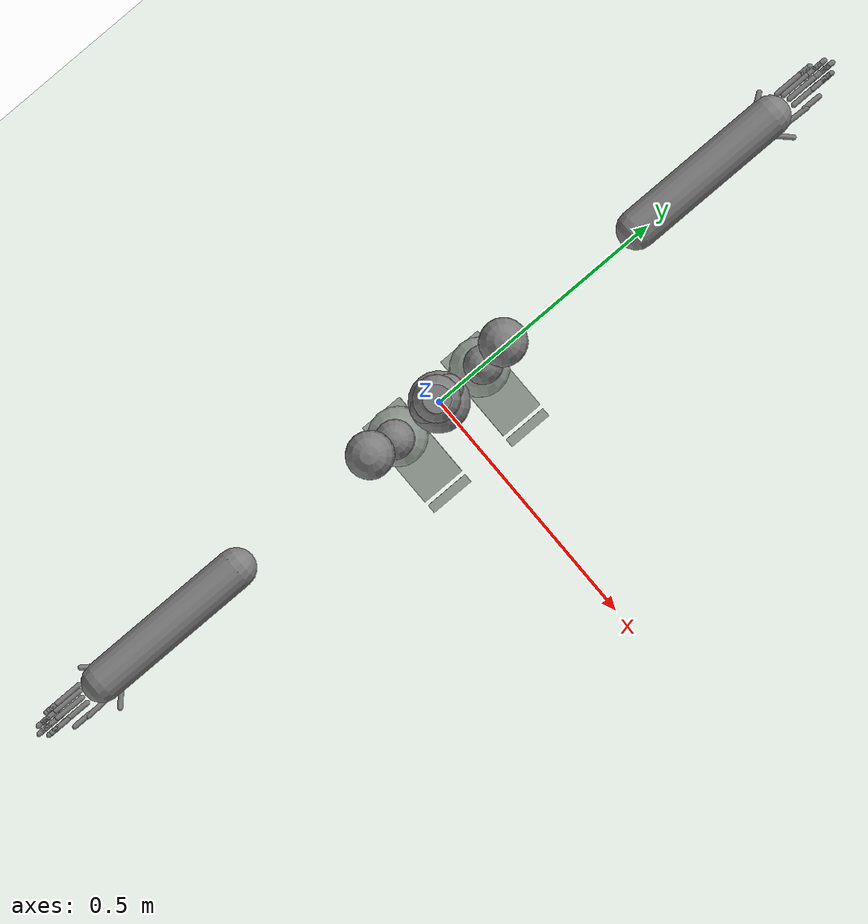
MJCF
<?xml version="1.0" ?>
<mujoco model="humanoid">
  <compiler coordinate="local"/>
  <statistic extent="2" center="0 0 1"/>
  <option timestep="0.00555"/>
  <default>
    <motor ctrlrange="-1 1" ctrllimited="true"/>
    <geom type="capsule" condim="1" friction="1.0 0.05 0.05" solimp=".9 .99 .003" solref=".015 1"/>
    <joint type="hinge" damping="0.1" stiffness="5" armature=".007" limited="true" solimplimit="0 .99 .01"/>
    <site size=".04" group="3"/>
  </default>
  <asset>
    <texture type="skybox" builtin="gradient" rgb1=".4 .5 .6" rgb2="0 0 0" width="100" height="100"/>
    <texture builtin="flat" height="1278" mark="cross" markrgb="1 1 1" name="texgeom" random="0.01" rgb1="0.8 0.6 0.4" rgb2="0.8 0.6 0.4" type="cube" width="127"/>
    <texture builtin="checker" height="100" name="texplane" rgb1="0 0 0" rgb2="0.8 0.8 0.8" type="2d" width="100"/>
    <material name="MatPlane" reflectance="0.5" shininess="1" specular="1" texrepeat="60 60" texture="texplane"/>
    <material name="geom" texture="texgeom" texuniform="true"/>
  </asset>
  <worldbody>
    <light cutoff="100" diffuse="1 1 1" dir="-0 0 -1.3" directional="true" exponent="1" pos="0 0 1.3" specular=".1 .1 .1"/>
    <geom conaffinity="1" condim="3" name="floor" pos="0 0 0" rgba="0.8 0.9 0.8 1" size="100 100 .2" type="plane" material="MatPlane"/>
    <body name="pHipOrigin" pos="0 0 0">
      <freejoint name="pHipOrigin"/>
      <geom type="sphere" contype="1" conaffinity="1" density="4629.6296296296305" size="0.05791" pos="0.0000 0.0000 -0.0000"/>
      <body name="jL5S1" pos="-0.00652511 0 0.05872585">
        <geom type="capsule" contype="1" conaffinity="1" density="1000" fromto="0 0 0.01182 0 0 0.04136" size="0.02068"/>
        <joint name="jL5S1_x" type="hinge" pos="0 0 0" axis="1 0 0" stiffness="500" damping="500" armature="0.02" range="-180.0000 180.0000"/>
        <joint name="jL5S1_y" type="hinge" pos="0 0 0" axis="0 1 0" stiffness="500" damping="500" armature="0.02" range="-180.0000 180.0000"/>
        <joint name="jL5S1_z" type="hinge" pos="0 0 0" axis="0 0 1" stiffness="500" damping="500" armature="0.02" range="-180.0000 180.0000"/>
        <body name="jL4L3" pos="0 0 0.07786956">
          <geom type="capsule" contype="1" conaffinity="1" density="1000" fromto="0 0 0.01557 0 0 0.05451" size="0.02725"/>
          <joint name="jL4L3_x" type="hinge" pos="0 0 0" axis="1 0 0" stiffness="500" damping="500" armature="0.02" range="-180.0000 180.0000"/>
          <joint name="jL4L3_y" type="hinge" pos="0 0 0" axis="0 1 0" stiffness="500" damping="500" armature="0.02" range="-180.0000 180.0000"/>
          <joint name="jL4L3_z" type="hinge" pos="0 0 0" axis="0 0 1" stiffness="500" damping="500" armature="0.02" range="-180.0000 180.0000"/>
          <body name="jL1T12" pos="-0.00065496 0 0.08489453">
            <geom type="capsule" contype="1" conaffinity="1" density="1000" fromto="0 0 0.01698 0 0 0.05943" size="0.02971"/>
            <joint name="jL1T12_x" type="hinge" pos="0 0 0" axis="1 0 0" stiffness="500" damping="500" armature="0.02" range="-180.0000 180.0000"/>
            <joint name="jL1T12_y" type="hinge" pos="0 0 0" axis="0 1 0" stiffness="500" damping="500" armature="0.02" range="-180.0000 180.0000"/>
            <joint name="jL1T12_z" type="hinge" pos="0 0 0" axis="0 0 1" stiffness="500" damping="500" armature="0.02" range="-180.0000 180.0000"/>
            <body name="jT9T8" pos="-0.00066287 0 0.08575297">
              <geom type="sphere" contype="1" conaffinity="1" density="1000" size="0.03430" pos="0.000 0.0000 0.034302"/>
              <joint name="jT9T8_x" type="hinge" pos="0 0 0" axis="1 0 0" stiffness="500" damping="500" armature="0.02" range="-180.0000 180.0000"/>
              <joint name="jT9T8_y" type="hinge" pos="0 0 0" axis="0 1 0" stiffness="500" damping="500" armature="0.02" range="-180.0000 180.0000"/>
              <joint name="jT9T8_z" type="hinge" pos="0 0 0" axis="0 0 1" stiffness="500" damping="500" armature="0.02" range="-180.0000 180.0000"/>
              <body name="jT1C7" pos="0 0 0.11929700">
                <geom type="capsule" contype="1" conaffinity="1" density="1000" fromto="0 0 0.02386 0 0 0.08351" size="0.04175"/>
                <joint name="jT1C7_x" type="hinge" pos="0 0 0" axis="1 0 0" stiffness="500" damping="500" armature="0.02" range="-180.0000 180.0000"/>
                <joint name="jT1C7_y" type="hinge" pos="0 0 0" axis="0 1 0" stiffness="500" damping="500" armature="0.02" range="-180.0000 180.0000"/>
                <joint name="jT1C7_z" type="hinge" pos="0 0 0" axis="0 0 1" stiffness="500" damping="500" armature="0.02" range="-180.0000 180.0000"/>
                <body name="jC1Head" pos="0.00096428 0 0.08173505">
                  <geom type="cylinder" contype="1" conaffinity="1" density="1000" fromto="0 0 0 0 0 0.08174" size="0.02452"/>
                  <joint name="jC1Head_x" type="hinge" pos="0 0 0" axis="1 0 0" stiffness="500" damping="500" armature="0.02" range="-180.0000 180.0000"/>
                  <joint name="jC1Head_y" type="hinge" pos="0 0 0" axis="0 1 0" stiffness="500" damping="500" armature="0.02" range="-180.0000 180.0000"/>
                  <joint name="jC1Head_z" type="hinge" pos="0 0 0" axis="0 0 1" stiffness="500" damping="500" armature="0.02" range="-180.0000 180.0000"/>
                </body>
              </body>
              <body name="jRightT4Shoulder" pos="0 -0.02755671 0.06718931">
                <geom type="capsule" contype="1" conaffinity="1" density="1000" fromto="0 0 0.01452 0 0 0.05083" size="0.02542"/>
                <joint name="jRightT4Shoulder_x" type="hinge" pos="0 0 0" axis="1 0 0" stiffness="500" damping="500" armature="0.02" range="-180.0000 180.0000"/>
                <joint name="jRightT4Shoulder_y" type="hinge" pos="0 0 0" axis="0 1 0" stiffness="500" damping="500" armature="0.02" range="-180.0000 180.0000"/>
                <joint name="jRightT4Shoulder_z" type="hinge" pos="0 0 0" axis="0 0 1" stiffness="500" damping="500" armature="0.02" range="-180.0000 180.0000"/>
                <body name="jRightShoulder" pos="0 -0.12239102 0">
                  <geom type="capsule" contype="1" conaffinity="1" density="1000" fromto="0 0 0.02448 0 0 0.08567" size="0.04284"/>
                  <joint name="jRightShoulder_x" type="hinge" pos="0 0 0" axis="1 0 0" stiffness="500" damping="500" armature="0.02" range="-180.0000 180.0000"/>
                  <joint name="jRightShoulder_y" type="hinge" pos="0 0 0" axis="0 1 0" stiffness="500" damping="500" armature="0.02" range="-180.0000 180.0000"/>
                  <joint name="jRightShoulder_z" type="hinge" pos="0 0 0" axis="0 0 1" stiffness="500" damping="500" armature="0.02" range="-180.0000 180.0000"/>
                  <body name="jRightElbow" pos="0 -0.30583259 0">
                    <geom type="capsule" contype="1" conaffinity="1" density="1000" fromto="0 0 0 0.00000000 -0.30583259 0.00000000" size="0.03670"/>
                    <joint name="jRightElbow_x" type="hinge" pos="0 0 0" axis="1 0 0" stiffness="500" damping="500" armature="0.02" range="-180.0000 180.0000"/>
                    <joint name="jRightElbow_y" type="hinge" pos="0 0 0" axis="0 1 0" stiffness="500" damping="500" armature="0.02" range="-180.0000 180.0000"/>
                    <joint name="jRightElbow_z" type="hinge" pos="0 0 0" axis="0 0 1" stiffness="500" damping="500" armature="0.02" range="-180.0000 180.0000"/>
                    <body name="jRightWrist" pos="0.00010393 -0.25823603 0">
                      <geom density="1000" type="box" pos="0 0 0" size="0.035 0.03 0.01" quat="1.0000 0.0000 0.0000 0.0000"/>
                      <joint name="jRightWrist_x" type="hinge" pos="0 0 0" axis="1 0 0" stiffness="500" damping="500" armature="0.02" range="-180.0000 180.0000"/>
                      <joint name="jRightWrist_y" type="hinge" pos="0 0 0" axis="0 1 0" stiffness="500" damping="500" armature="0.02" range="-180.0000 180.0000"/>
                      <joint name="jRightWrist_z" type="hinge" pos="0 0 0" axis="0 0 1" stiffness="500" damping="500" armature="0.02" range="-180.0000 180.0000"/>
                      <body name="jRightFirstCMC" pos="0.02759334 -0.02644976 -0.00124960">
                        <geom type="capsule" contype="1" conaffinity="1" density="1000" fromto="0 0 0 0.02759334 -0.02644976 -0.00124960" size="0.005"/>
                        <joint name="jRightFirstCMC_x" type="hinge" pos="0 0 0" axis="1 0 0" stiffness="500" damping="500" armature="0.02" range="-180.0000 180.0000"/>
                        <joint name="jRightFirstCMC_y" type="hinge" pos="0 0 0" axis="0 1 0" stiffness="500" damping="500" armature="0.02" range="-180.0000 180.0000"/>
                        <joint name="jRightFirstCMC_z" type="hinge" pos="0 0 0" axis="0 0 1" stiffness="500" damping="500" armature="0.02" range="-180.0000 180.0000"/>
                        <body name="jRightFirstMCP" pos="0.00137308 -0.03874727 0.00081873">
                          <geom type="capsule" contype="1" conaffinity="1" density="1000" fromto="0 0 0 0.00137308 -0.03874727 0.00081873" size="0.005"/>
                          <joint name="jRightFirstMCP_x" type="hinge" pos="0 0 0" axis="1 0 0" stiffness="500" damping="500" armature="0.02" range="-180.0000 180.0000"/>
                          <joint name="jRightFirstMCP_y" type="hinge" pos="0 0 0" axis="0 1 0" stiffness="500" damping="500" armature="0.02" range="-180.0000 180.0000"/>
                          <joint name="jRightFirstMCP_z" type="hinge" pos="0 0 0" axis="0 0 1" stiffness="500" damping="500" armature="0.02" range="-180.0000 180.0000"/>
                          <body name="jRightIP" pos="0 -0.03402020 0">
                            <geom type="capsule" contype="1" conaffinity="1" density="1000" fromto="0 0 0 0.00000000 -0.03402020 0.00000000" size="0.005"/>
                            <joint name="jRightIP_x" type="hinge" pos="0 0 0" axis="1 0 0" stiffness="500" damping="500" armature="0.02" range="-180.0000 180.0000"/>
                            <joint name="jRightIP_y" type="hinge" pos="0 0 0" axis="0 1 0" stiffness="500" damping="500" armature="0.02" range="-180.0000 180.0000"/>
                            <joint name="jRightIP_z" type="hinge" pos="0 0 0" axis="0 0 1" stiffness="500" damping="500" armature="0.02" range="-180.0000 180.0000"/>
                          </body>
                        </body>
                      </body>
                      <body name="jRightSecondCMC" pos="0.01169456 -0.03416781 -0.00059597">
                        <geom type="capsule" contype="1" conaffinity="1" density="1000" fromto="0 0 0 0.01169456 -0.03416781 -0.00059597" size="0.005"/>
                        <joint name="jRightSecondCMC_x" type="hinge" pos="0 0 0" axis="1 0 0" stiffness="500" damping="500" armature="0.02" range="-180.0000 180.0000"/>
                        <joint name="jRightSecondCMC_y" type="hinge" pos="0 0 0" axis="0 1 0" stiffness="500" damping="500" armature="0.02" range="-180.0000 180.0000"/>
                        <joint name="jRightSecondCMC_z" type="hinge" pos="0 0 0" axis="0 0 1" stiffness="500" damping="500" armature="0.02" range="-180.0000 180.0000"/>
                        <body name="jRightSecondMCP" pos="-0.00035644 -0.05684891 -0.00058971">
                          <geom type="capsule" contype="1" conaffinity="1" density="1000" fromto="0 0 0 -0.00035644 -0.05684891 -0.00058971" size="0.005"/>
                          <joint name="jRightSecondMCP_x" type="hinge" pos="0 0 0" axis="1 0 0" stiffness="500" damping="500" armature="0.02" range="-180.0000 180.0000"/>
                          <joint name="jRightSecondMCP_y" type="hinge" pos="0 0 0" axis="0 1 0" stiffness="500" damping="500" armature="0.02" range="-180.0000 180.0000"/>
                          <joint name="jRightSecondMCP_z" type="hinge" pos="0 0 0" axis="0 0 1" stiffness="500" damping="500" armature="0.02" range="-180.0000 180.0000"/>
                          <body name="jRightSecondPIP" pos="0 -0.04111196 0">
                            <geom type="capsule" contype="1" conaffinity="1" density="1000" fromto="0 0 0 0.00000000 -0.04111196 0.00000000" size="0.005"/>
                            <joint name="jRightSecondPIP_x" type="hinge" pos="0 0 0" axis="1 0 0" stiffness="500" damping="500" armature="0.02" range="-180.0000 180.0000"/>
                            <joint name="jRightSecondPIP_y" type="hinge" pos="0 0 0" axis="0 1 0" stiffness="500" damping="500" armature="0.02" range="-180.0000 180.0000"/>
                            <joint name="jRightSecondPIP_z" type="hinge" pos="0 0 0" axis="0 0 1" stiffness="500" damping="500" armature="0.02" range="-180.0000 180.0000"/>
                            <body name="jRightSecondDIP" pos="0 -0.02247494 0">
                              <geom type="capsule" contype="1" conaffinity="1" density="1000" fromto="0 0 0 0.00000000 -0.02247494 0.00000000" size="0.005"/>
                              <joint name="jRightSecondDIP_x" type="hinge" pos="0 0 0" axis="1 0 0" stiffness="500" damping="500" armature="0.02" range="-180.0000 180.0000"/>
                              <joint name="jRightSecondDIP_y" type="hinge" pos="0 0 0" axis="0 1 0" stiffness="500" damping="500" armature="0.02" range="-180.0000 180.0000"/>
                              <joint name="jRightSecondDIP_z" type="hinge" pos="0 0 0" axis="0 0 1" stiffness="500" damping="500" armature="0.02" range="-180.0000 180.0000"/>
                            </body>
                          </body>
                        </body>
                      </body>
                      <body name="jRightThirdCMC" pos="-0.00066517 -0.03597074 0.00151226">
                        <geom type="capsule" contype="1" conaffinity="1" density="1000" fromto="0 0 0 -0.00066517 -0.03597074 0.00151226" size="0.005"/>
                        <joint name="jRightThirdCMC_x" type="hinge" pos="0 0 0" axis="1 0 0" stiffness="500" damping="500" armature="0.02" range="-180.0000 180.0000"/>
                        <joint name="jRightThirdCMC_y" type="hinge" pos="0 0 0" axis="0 1 0" stiffness="500" damping="500" armature="0.02" range="-180.0000 180.0000"/>
                        <joint name="jRightThirdCMC_z" type="hinge" pos="0 0 0" axis="0 0 1" stiffness="500" damping="500" armature="0.02" range="-180.0000 180.0000"/>
                        <body name="jRightThirdMCP" pos="-0.00066519 -0.05511140 0.00149937">
                          <geom type="capsule" contype="1" conaffinity="1" density="1000" fromto="0 0 0 -0.00066519 -0.05511140 0.00149937" size="0.005"/>
                          <joint name="jRightThirdMCP_x" type="hinge" pos="0 0 0" axis="1 0 0" stiffness="500" damping="500" armature="0.02" range="-180.0000 180.0000"/>
                          <joint name="jRightThirdMCP_y" type="hinge" pos="0 0 0" axis="0 1 0" stiffness="500" damping="500" armature="0.02" range="-180.0000 180.0000"/>
                          <joint name="jRightThirdMCP_z" type="hinge" pos="0 0 0" axis="0 0 1" stiffness="500" damping="500" armature="0.02" range="-180.0000 180.0000"/>
                          <body name="jRightThirdPIP" pos="0 -0.04495940 0">
                            <geom type="capsule" contype="1" conaffinity="1" density="1000" fromto="0 0 0 0.00000000 -0.04495940 0.00000000" size="0.005"/>
                            <joint name="jRightThirdPIP_x" type="hinge" pos="0 0 0" axis="1 0 0" stiffness="500" damping="500" armature="0.02" range="-180.0000 180.0000"/>
                            <joint name="jRightThirdPIP_y" type="hinge" pos="0 0 0" axis="0 1 0" stiffness="500" damping="500" armature="0.02" range="-180.0000 180.0000"/>
                            <joint name="jRightThirdPIP_z" type="hinge" pos="0 0 0" axis="0 0 1" stiffness="500" damping="500" armature="0.02" range="-180.0000 180.0000"/>
                            <body name="jRightThirdDIP" pos="0 -0.02630422 0">
                              <geom type="capsule" contype="1" conaffinity="1" density="1000" fromto="0 0 0 0.00000000 -0.02630422 0.00000000" size="0.005"/>
                              <joint name="jRightThirdDIP_x" type="hinge" pos="0 0 0" axis="1 0 0" stiffness="500" damping="500" armature="0.02" range="-180.0000 180.0000"/>
                              <joint name="jRightThirdDIP_y" type="hinge" pos="0 0 0" axis="0 1 0" stiffness="500" damping="500" armature="0.02" range="-180.0000 180.0000"/>
                              <joint name="jRightThirdDIP_z" type="hinge" pos="0 0 0" axis="0 0 1" stiffness="500" damping="500" armature="0.02" range="-180.0000 180.0000"/>
                            </body>
                          </body>
                        </body>
                      </body>
                      <body name="jRightFourthCMC" pos="-0.01220263 -0.03398633 0.00079999">
                        <geom type="capsule" contype="1" conaffinity="1" density="1000" fromto="0 0 0 -0.01220263 -0.03398633 0.00079999" size="0.005"/>
                        <joint name="jRightFourthCMC_x" type="hinge" pos="0 0 0" axis="1 0 0" stiffness="500" damping="500" armature="0.02" range="-180.0000 180.0000"/>
                        <joint name="jRightFourthCMC_y" type="hinge" pos="0 0 0" axis="0 1 0" stiffness="500" damping="500" armature="0.02" range="-180.0000 180.0000"/>
                        <joint name="jRightFourthCMC_z" type="hinge" pos="0 0 0" axis="0 0 1" stiffness="500" damping="500" armature="0.02" range="-180.0000 180.0000"/>
                        <body name="jRightFourthMCP" pos="-0.00039075 -0.05355647 0.00084141">
                          <geom type="capsule" contype="1" conaffinity="1" density="1000" fromto="0 0 0 -0.00039075 -0.05355647 0.00084141" size="0.005"/>
                          <joint name="jRightFourthMCP_x" type="hinge" pos="0 0 0" axis="1 0 0" stiffness="500" damping="500" armature="0.02" range="-180.0000 180.0000"/>
                          <joint name="jRightFourthMCP_y" type="hinge" pos="0 0 0" axis="0 1 0" stiffness="500" damping="500" armature="0.02" range="-180.0000 180.0000"/>
                          <joint name="jRightFourthMCP_z" type="hinge" pos="0 0 0" axis="0 0 1" stiffness="500" damping="500" armature="0.02" range="-180.0000 180.0000"/>
                          <body name="jRightFourthPIP" pos="0 -0.04271992 0">
                            <geom type="capsule" contype="1" conaffinity="1" density="1000" fromto="0 0 0 0.00000000 -0.04271992 0.00000000" size="0.005"/>
                            <joint name="jRightFourthPIP_x" type="hinge" pos="0 0 0" axis="1 0 0" stiffness="500" damping="500" armature="0.02" range="-180.0000 180.0000"/>
                            <joint name="jRightFourthPIP_y" type="hinge" pos="0 0 0" axis="0 1 0" stiffness="500" damping="500" armature="0.02" range="-180.0000 180.0000"/>
                            <joint name="jRightFourthPIP_z" type="hinge" pos="0 0 0" axis="0 0 1" stiffness="500" damping="500" armature="0.02" range="-180.0000 180.0000"/>
                            <body name="jRightFourthDIP" pos="0 -0.02531219 0">
                              <geom type="capsule" contype="1" conaffinity="1" density="1000" fromto="0 0 0 0.00000000 -0.02531219 0.00000000" size="0.005"/>
                              <joint name="jRightFourthDIP_x" type="hinge" pos="0 0 0" axis="1 0 0" stiffness="500" damping="500" armature="0.02" range="-180.0000 180.0000"/>
                              <joint name="jRightFourthDIP_y" type="hinge" pos="0 0 0" axis="0 1 0" stiffness="500" damping="500" armature="0.02" range="-180.0000 180.0000"/>
                              <joint name="jRightFourthDIP_z" type="hinge" pos="0 0 0" axis="0 0 1" stiffness="500" damping="500" armature="0.02" range="-180.0000 180.0000"/>
                            </body>
                          </body>
                        </body>
                      </body>
                      <body name="jRightFifthCMC" pos="-0.02139312 -0.02980888 0.00058803">
                        <geom type="capsule" contype="1" conaffinity="1" density="1000" fromto="0 0 0 -0.02139312 -0.02980888 0.00058803" size="0.005"/>
                        <joint name="jRightFifthCMC_x" type="hinge" pos="0 0 0" axis="1 0 0" stiffness="500" damping="500" armature="0.02" range="-180.0000 180.0000"/>
                        <joint name="jRightFifthCMC_y" type="hinge" pos="0 0 0" axis="0 1 0" stiffness="500" damping="500" armature="0.02" range="-180.0000 180.0000"/>
                        <joint name="jRightFifthCMC_z" type="hinge" pos="0 0 0" axis="0 0 1" stiffness="500" damping="500" armature="0.02" range="-180.0000 180.0000"/>
                        <body name="jRightFifthMCP" pos="-0.00000751 -0.05085420 0.00069982">
                          <geom type="capsule" contype="1" conaffinity="1" density="1000" fromto="0 0 0 -0.00000751 -0.05085420 0.00069982" size="0.005"/>
                          <joint name="jRightFifthMCP_x" type="hinge" pos="0 0 0" axis="1 0 0" stiffness="500" damping="500" armature="0.02" range="-180.0000 180.0000"/>
                          <joint name="jRightFifthMCP_y" type="hinge" pos="0 0 0" axis="0 1 0" stiffness="500" damping="500" armature="0.02" range="-180.0000 180.0000"/>
                          <joint name="jRightFifthMCP_z" type="hinge" pos="0 0 0" axis="0 0 1" stiffness="500" damping="500" armature="0.02" range="-180.0000 180.0000"/>
                          <body name="jRightFifthPIP" pos="0 -0.03575402 0">
                            <geom type="capsule" contype="1" conaffinity="1" density="1000" fromto="0 0 0 0.00000000 -0.03575402 0.00000000" size="0.005"/>
                            <joint name="jRightFifthPIP_x" type="hinge" pos="0 0 0" axis="1 0 0" stiffness="500" damping="500" armature="0.02" range="-180.0000 180.0000"/>
                            <joint name="jRightFifthPIP_y" type="hinge" pos="0 0 0" axis="0 1 0" stiffness="500" damping="500" armature="0.02" range="-180.0000 180.0000"/>
                            <joint name="jRightFifthPIP_z" type="hinge" pos="0 0 0" axis="0 0 1" stiffness="500" damping="500" armature="0.02" range="-180.0000 180.0000"/>
                            <body name="jRightFifthDIP" pos="0 -0.01938885 0">
                              <geom type="capsule" contype="1" conaffinity="1" density="1000" fromto="0 0 0 0.00000000 -0.01938885 0.00000000" size="0.005"/>
                              <joint name="jRightFifthDIP_x" type="hinge" pos="0 0 0" axis="1 0 0" stiffness="500" damping="500" armature="0.02" range="-180.0000 180.0000"/>
                              <joint name="jRightFifthDIP_y" type="hinge" pos="0 0 0" axis="0 1 0" stiffness="500" damping="500" armature="0.02" range="-180.0000 180.0000"/>
                              <joint name="jRightFifthDIP_z" type="hinge" pos="0 0 0" axis="0 0 1" stiffness="500" damping="500" armature="0.02" range="-180.0000 180.0000"/>
                            </body>
                          </body>
                        </body>
                      </body>
                    </body>
                  </body>
                </body>
              </body>
              <body name="jLeftT4Shoulder" pos="0 0.02760934 0.06731762">
                <geom type="capsule" contype="1" conaffinity="1" density="1000" fromto="0 0 0.01455 0 0 0.05093" size="0.02547"/>
                <joint name="jLeftT4Shoulder_x" type="hinge" pos="0 0 0" axis="1 0 0" stiffness="500" damping="500" armature="0.02" range="-180.0000 180.0000"/>
                <joint name="jLeftT4Shoulder_y" type="hinge" pos="0 0 0" axis="0 1 0" stiffness="500" damping="500" armature="0.02" range="-180.0000 180.0000"/>
                <joint name="jLeftT4Shoulder_z" type="hinge" pos="0 0 0" axis="0 0 1" stiffness="500" damping="500" armature="0.02" range="-180.0000 180.0000"/>
                <body name="jLeftShoulder" pos="0 0.12267043 0">
                  <geom type="capsule" contype="1" conaffinity="1" density="1000" fromto="0 0 0.02453 0 0 0.08587" size="0.04293"/>
                  <joint name="jLeftShoulder_x" type="hinge" pos="0 0 0" axis="1 0 0" stiffness="500" damping="500" armature="0.02" range="-180.0000 180.0000"/>
                  <joint name="jLeftShoulder_y" type="hinge" pos="0 0 0" axis="0 1 0" stiffness="500" damping="500" armature="0.02" range="-180.0000 180.0000"/>
                  <joint name="jLeftShoulder_z" type="hinge" pos="0 0 0" axis="0 0 1" stiffness="500" damping="500" armature="0.02" range="-180.0000 180.0000"/>
                  <body name="jLeftElbow" pos="0 0.30499026 0">
                    <geom type="capsule" contype="1" conaffinity="1" density="1000" fromto="0 0 0 0.00000000 0.30499026 0.00000000" size="0.03660"/>
                    <joint name="jLeftElbow_x" type="hinge" pos="0 0 0" axis="1 0 0" stiffness="500" damping="500" armature="0.02" range="-180.0000 180.0000"/>
                    <joint name="jLeftElbow_y" type="hinge" pos="0 0 0" axis="0 1 0" stiffness="500" damping="500" armature="0.02" range="-180.0000 180.0000"/>
                    <joint name="jLeftElbow_z" type="hinge" pos="0 0 0" axis="0 0 1" stiffness="500" damping="500" armature="0.02" range="-180.0000 180.0000"/>
                    <body name="jLeftWrist" pos="0.00010356 0.25729713 0">
                      <geom density="1000" type="box" pos="0 0 0" size="0.035 0.03 0.01" quat="1.0000 0.0000 0.0000 0.0000"/>
                      <joint name="jLeftWrist_x" type="hinge" pos="0 0 0" axis="1 0 0" stiffness="500" damping="500" armature="0.02" range="-180.0000 180.0000"/>
                      <joint name="jLeftWrist_y" type="hinge" pos="0 0 0" axis="0 1 0" stiffness="500" damping="500" armature="0.02" range="-180.0000 180.0000"/>
                      <joint name="jLeftWrist_z" type="hinge" pos="0 0 0" axis="0 0 1" stiffness="500" damping="500" armature="0.02" range="-180.0000 180.0000"/>
                      <body name="jLeftFirstCMC" pos="0.02700738 0.02707116 -0.00120876">
                        <geom type="capsule" contype="1" conaffinity="1" density="1000" fromto="0 0 0 0.02700738 0.02707116 -0.00120876" size="0.005"/>
                        <joint name="jLeftFirstCMC_x" type="hinge" pos="0 0 0" axis="1 0 0" stiffness="500" damping="500" armature="0.02" range="-180.0000 180.0000"/>
                        <joint name="jLeftFirstCMC_y" type="hinge" pos="0 0 0" axis="0 1 0" stiffness="500" damping="500" armature="0.02" range="-180.0000 180.0000"/>
                        <joint name="jLeftFirstCMC_z" type="hinge" pos="0 0 0" axis="0 0 1" stiffness="500" damping="500" armature="0.02" range="-180.0000 180.0000"/>
                        <body name="jLeftFirstMCP" pos="0.00135985 0.03874640 0.00079788">
                          <geom type="capsule" contype="1" conaffinity="1" density="1000" fromto="0 0 0 0.00135985 0.03874640 0.00079788" size="0.005"/>
                          <joint name="jLeftFirstMCP_x" type="hinge" pos="0 0 0" axis="1 0 0" stiffness="500" damping="500" armature="0.02" range="-180.0000 180.0000"/>
                          <joint name="jLeftFirstMCP_y" type="hinge" pos="0 0 0" axis="0 1 0" stiffness="500" damping="500" armature="0.02" range="-180.0000 180.0000"/>
                          <joint name="jLeftFirstMCP_z" type="hinge" pos="0 0 0" axis="0 0 1" stiffness="500" damping="500" armature="0.02" range="-180.0000 180.0000"/>
                          <body name="jLeftIP" pos="0 0.03402020 0">
                            <geom type="capsule" contype="1" conaffinity="1" density="1000" fromto="0 0 0 0.00000000 0.03402020 0.00000000" size="0.005"/>
                            <joint name="jLeftIP_x" type="hinge" pos="0 0 0" axis="1 0 0" stiffness="500" damping="500" armature="0.02" range="-180.0000 180.0000"/>
                            <joint name="jLeftIP_y" type="hinge" pos="0 0 0" axis="0 1 0" stiffness="500" damping="500" armature="0.02" range="-180.0000 180.0000"/>
                            <joint name="jLeftIP_z" type="hinge" pos="0 0 0" axis="0 0 1" stiffness="500" damping="500" armature="0.02" range="-180.0000 180.0000"/>
                          </body>
                        </body>
                      </body>
                      <body name="jLeftSecondCMC" pos="0.01182926 0.03410494 -0.00060089">
                        <geom type="capsule" contype="1" conaffinity="1" density="1000" fromto="0 0 0 0.01182926 0.03410494 -0.00060089" size="0.005"/>
                        <joint name="jLeftSecondCMC_x" type="hinge" pos="0 0 0" axis="1 0 0" stiffness="500" damping="500" armature="0.02" range="-180.0000 180.0000"/>
                        <joint name="jLeftSecondCMC_y" type="hinge" pos="0 0 0" axis="0 1 0" stiffness="500" damping="500" armature="0.02" range="-180.0000 180.0000"/>
                        <joint name="jLeftSecondCMC_z" type="hinge" pos="0 0 0" axis="0 0 1" stiffness="500" damping="500" armature="0.02" range="-180.0000 180.0000"/>
                        <body name="jLeftSecondMCP" pos="-0.00031079 0.05685008 -0.00059700">
                          <geom type="capsule" contype="1" conaffinity="1" density="1000" fromto="0 0 0 -0.00031079 0.05685008 -0.00059700" size="0.005"/>
                          <joint name="jLeftSecondMCP_x" type="hinge" pos="0 0 0" axis="1 0 0" stiffness="500" damping="500" armature="0.02" range="-180.0000 180.0000"/>
                          <joint name="jLeftSecondMCP_y" type="hinge" pos="0 0 0" axis="0 1 0" stiffness="500" damping="500" armature="0.02" range="-180.0000 180.0000"/>
                          <joint name="jLeftSecondMCP_z" type="hinge" pos="0 0 0" axis="0 0 1" stiffness="500" damping="500" armature="0.02" range="-180.0000 180.0000"/>
                          <body name="jLeftSecondPIP" pos="0 0.04111196 0">
                            <geom type="capsule" contype="1" conaffinity="1" density="1000" fromto="0 0 0 0.00000000 0.04111196 0.00000000" size="0.005"/>
                            <joint name="jLeftSecondPIP_x" type="hinge" pos="0 0 0" axis="1 0 0" stiffness="500" damping="500" armature="0.02" range="-180.0000 180.0000"/>
                            <joint name="jLeftSecondPIP_y" type="hinge" pos="0 0 0" axis="0 1 0" stiffness="500" damping="500" armature="0.02" range="-180.0000 180.0000"/>
                            <joint name="jLeftSecondPIP_z" type="hinge" pos="0 0 0" axis="0 0 1" stiffness="500" damping="500" armature="0.02" range="-180.0000 180.0000"/>
                            <body name="jLeftSecondDIP" pos="0 0.02247494 0">
                              <geom type="capsule" contype="1" conaffinity="1" density="1000" fromto="0 0 0 0.00000000 0.02247494 0.00000000" size="0.005"/>
                              <joint name="jLeftSecondDIP_x" type="hinge" pos="0 0 0" axis="1 0 0" stiffness="500" damping="500" armature="0.02" range="-180.0000 180.0000"/>
                              <joint name="jLeftSecondDIP_y" type="hinge" pos="0 0 0" axis="0 1 0" stiffness="500" damping="500" armature="0.02" range="-180.0000 180.0000"/>
                              <joint name="jLeftSecondDIP_z" type="hinge" pos="0 0 0" axis="0 0 1" stiffness="500" damping="500" armature="0.02" range="-180.0000 180.0000"/>
                            </body>
                          </body>
                        </body>
                      </body>
                      <body name="jLeftThirdCMC" pos="-0.00066907 0.03597397 0.00146186">
                        <geom type="capsule" contype="1" conaffinity="1" density="1000" fromto="0 0 0 -0.00066907 0.03597397 0.00146186" size="0.005"/>
                        <joint name="jLeftThirdCMC_x" type="hinge" pos="0 0 0" axis="1 0 0" stiffness="500" damping="500" armature="0.02" range="-180.0000 180.0000"/>
                        <joint name="jLeftThirdCMC_y" type="hinge" pos="0 0 0" axis="0 1 0" stiffness="500" damping="500" armature="0.02" range="-180.0000 180.0000"/>
                        <joint name="jLeftThirdCMC_z" type="hinge" pos="0 0 0" axis="0 0 1" stiffness="500" damping="500" armature="0.02" range="-180.0000 180.0000"/>
                        <body name="jLeftThirdMCP" pos="-0.00067056 0.05511247 0.00146923">
                          <geom type="capsule" contype="1" conaffinity="1" density="1000" fromto="0 0 0 -0.00067056 0.05511247 0.00146923" size="0.005"/>
                          <joint name="jLeftThirdMCP_x" type="hinge" pos="0 0 0" axis="1 0 0" stiffness="500" damping="500" armature="0.02" range="-180.0000 180.0000"/>
                          <joint name="jLeftThirdMCP_y" type="hinge" pos="0 0 0" axis="0 1 0" stiffness="500" damping="500" armature="0.02" range="-180.0000 180.0000"/>
                          <joint name="jLeftThirdMCP_z" type="hinge" pos="0 0 0" axis="0 0 1" stiffness="500" damping="500" armature="0.02" range="-180.0000 180.0000"/>
                          <body name="jLeftThirdPIP" pos="0 0.04495940 0">
                            <geom type="capsule" contype="1" conaffinity="1" density="1000" fromto="0 0 0 0.00000000 0.04495940 0.00000000" size="0.005"/>
                            <joint name="jLeftThirdPIP_x" type="hinge" pos="0 0 0" axis="1 0 0" stiffness="500" damping="500" armature="0.02" range="-180.0000 180.0000"/>
                            <joint name="jLeftThirdPIP_y" type="hinge" pos="0 0 0" axis="0 1 0" stiffness="500" damping="500" armature="0.02" range="-180.0000 180.0000"/>
                            <joint name="jLeftThirdPIP_z" type="hinge" pos="0 0 0" axis="0 0 1" stiffness="500" damping="500" armature="0.02" range="-180.0000 180.0000"/>
                            <body name="jLeftThirdDIP" pos="0 0.02630422 0">
                              <geom type="capsule" contype="1" conaffinity="1" density="1000" fromto="0 0 0 0.00000000 0.02630422 0.00000000" size="0.005"/>
                              <joint name="jLeftThirdDIP_x" type="hinge" pos="0 0 0" axis="1 0 0" stiffness="500" damping="500" armature="0.02" range="-180.0000 180.0000"/>
                              <joint name="jLeftThirdDIP_y" type="hinge" pos="0 0 0" axis="0 1 0" stiffness="500" damping="500" armature="0.02" range="-180.0000 180.0000"/>
                              <joint name="jLeftThirdDIP_z" type="hinge" pos="0 0 0" axis="0 0 1" stiffness="500" damping="500" armature="0.02" range="-180.0000 180.0000"/>
                            </body>
                          </body>
                        </body>
                      </body>
                      <body name="jLeftFourthCMC" pos="-0.01265038 0.03381249 0.00085398">
                        <geom type="capsule" contype="1" conaffinity="1" density="1000" fromto="0 0 0 -0.01265038 0.03381249 0.00085398" size="0.005"/>
                        <joint name="jLeftFourthCMC_x" type="hinge" pos="0 0 0" axis="1 0 0" stiffness="500" damping="500" armature="0.02" range="-180.0000 180.0000"/>
                        <joint name="jLeftFourthCMC_y" type="hinge" pos="0 0 0" axis="0 1 0" stiffness="500" damping="500" armature="0.02" range="-180.0000 180.0000"/>
                        <joint name="jLeftFourthCMC_z" type="hinge" pos="0 0 0" axis="0 0 1" stiffness="500" damping="500" armature="0.02" range="-180.0000 180.0000"/>
                        <body name="jLeftFourthMCP" pos="-0.00042022 0.05355340 0.00088989">
                          <geom type="capsule" contype="1" conaffinity="1" density="1000" fromto="0 0 0 -0.00042022 0.05355340 0.00088989" size="0.005"/>
                          <joint name="jLeftFourthMCP_x" type="hinge" pos="0 0 0" axis="1 0 0" stiffness="500" damping="500" armature="0.02" range="-180.0000 180.0000"/>
                          <joint name="jLeftFourthMCP_y" type="hinge" pos="0 0 0" axis="0 1 0" stiffness="500" damping="500" armature="0.02" range="-180.0000 180.0000"/>
                          <joint name="jLeftFourthMCP_z" type="hinge" pos="0 0 0" axis="0 0 1" stiffness="500" damping="500" armature="0.02" range="-180.0000 180.0000"/>
                          <body name="jLeftFourthPIP" pos="0 0.04271992 0">
                            <geom type="capsule" contype="1" conaffinity="1" density="1000" fromto="0 0 0 0.00000000 0.04271992 0.00000000" size="0.005"/>
                            <joint name="jLeftFourthPIP_x" type="hinge" pos="0 0 0" axis="1 0 0" stiffness="500" damping="500" armature="0.02" range="-180.0000 180.0000"/>
                            <joint name="jLeftFourthPIP_y" type="hinge" pos="0 0 0" axis="0 1 0" stiffness="500" damping="500" armature="0.02" range="-180.0000 180.0000"/>
                            <joint name="jLeftFourthPIP_z" type="hinge" pos="0 0 0" axis="0 0 1" stiffness="500" damping="500" armature="0.02" range="-180.0000 180.0000"/>
                            <body name="jLeftFourthDIP" pos="0 0.02531219 0">
                              <geom type="capsule" contype="1" conaffinity="1" density="1000" fromto="0 0 0 0.00000000 0.02531219 0.00000000" size="0.005"/>
                              <joint name="jLeftFourthDIP_x" type="hinge" pos="0 0 0" axis="1 0 0" stiffness="500" damping="500" armature="0.02" range="-180.0000 180.0000"/>
                              <joint name="jLeftFourthDIP_y" type="hinge" pos="0 0 0" axis="0 1 0" stiffness="500" damping="500" armature="0.02" range="-180.0000 180.0000"/>
                              <joint name="jLeftFourthDIP_z" type="hinge" pos="0 0 0" axis="0 0 1" stiffness="500" damping="500" armature="0.02" range="-180.0000 180.0000"/>
                            </body>
                          </body>
                        </body>
                      </body>
                      <body name="jLeftFifthCMC" pos="-0.02204120 0.02933762 0.00059749">
                        <geom type="capsule" contype="1" conaffinity="1" density="1000" fromto="0 0 0 -0.02204120 0.02933762 0.00059749" size="0.005"/>
                        <joint name="jLeftFifthCMC_x" type="hinge" pos="0 0 0" axis="1 0 0" stiffness="500" damping="500" armature="0.02" range="-180.0000 180.0000"/>
                        <joint name="jLeftFifthCMC_y" type="hinge" pos="0 0 0" axis="0 1 0" stiffness="500" damping="500" armature="0.02" range="-180.0000 180.0000"/>
                        <joint name="jLeftFifthCMC_z" type="hinge" pos="0 0 0" axis="0 0 1" stiffness="500" damping="500" armature="0.02" range="-180.0000 180.0000"/>
                        <body name="jLeftFifthMCP" pos="-0.00001442 0.05085282 0.00073174">
                          <geom type="capsule" contype="1" conaffinity="1" density="1000" fromto="0 0 0 -0.00001442 0.05085282 0.00073174" size="0.005"/>
                          <joint name="jLeftFifthMCP_x" type="hinge" pos="0 0 0" axis="1 0 0" stiffness="500" damping="500" armature="0.02" range="-180.0000 180.0000"/>
                          <joint name="jLeftFifthMCP_y" type="hinge" pos="0 0 0" axis="0 1 0" stiffness="500" damping="500" armature="0.02" range="-180.0000 180.0000"/>
                          <joint name="jLeftFifthMCP_z" type="hinge" pos="0 0 0" axis="0 0 1" stiffness="500" damping="500" armature="0.02" range="-180.0000 180.0000"/>
                          <body name="jLeftFifthPIP" pos="0 0.03575402 0">
                            <geom type="capsule" contype="1" conaffinity="1" density="1000" fromto="0 0 0 0.00000000 0.03575402 0.00000000" size="0.005"/>
                            <joint name="jLeftFifthPIP_x" type="hinge" pos="0 0 0" axis="1 0 0" stiffness="500" damping="500" armature="0.02" range="-180.0000 180.0000"/>
                            <joint name="jLeftFifthPIP_y" type="hinge" pos="0 0 0" axis="0 1 0" stiffness="500" damping="500" armature="0.02" range="-180.0000 180.0000"/>
                            <joint name="jLeftFifthPIP_z" type="hinge" pos="0 0 0" axis="0 0 1" stiffness="500" damping="500" armature="0.02" range="-180.0000 180.0000"/>
                            <body name="jLeftFifthDIP" pos="0 0.01938885 0">
                              <geom type="capsule" contype="1" conaffinity="1" density="1000" fromto="0 0 0 0.00000000 0.01938885 0.00000000" size="0.005"/>
                              <joint name="jLeftFifthDIP_x" type="hinge" pos="0 0 0" axis="1 0 0" stiffness="500" damping="500" armature="0.02" range="-180.0000 180.0000"/>
                              <joint name="jLeftFifthDIP_y" type="hinge" pos="0 0 0" axis="0 1 0" stiffness="500" damping="500" armature="0.02" range="-180.0000 180.0000"/>
                              <joint name="jLeftFifthDIP_z" type="hinge" pos="0 0 0" axis="0 0 1" stiffness="500" damping="500" armature="0.02" range="-180.0000 180.0000"/>
                            </body>
                          </body>
                        </body>
                      </body>
                    </body>
                  </body>
                </body>
              </body>
            </body>
          </body>
        </body>
      </body>
      <body name="jRightHip" pos="-0.00017850 -0.10592912 0.00160691">
        <geom type="capsule" contype="1" conaffinity="1" density="1000" fromto="0 0 0.02119 0 0 0.07416" size="0.03708"/>
        <joint name="jRightHip_x" type="hinge" pos="0 0 0" axis="1 0 0" stiffness="500" damping="500" armature="0.02" range="-180.0000 180.0000"/>
        <joint name="jRightHip_y" type="hinge" pos="0 0 0" axis="0 1 0" stiffness="500" damping="500" armature="0.02" range="-180.0000 180.0000"/>
        <joint name="jRightHip_z" type="hinge" pos="0 0 0" axis="0 0 1" stiffness="500" damping="500" armature="0.02" range="-180.0000 180.0000"/>
        <body name="jRightKnee" pos="0.00005943 0 -0.49840009">
          <geom type="capsule" contype="1" conaffinity="1" density="1000" fromto="0 0 0 0.00005943 0.00000000 -0.49840009" size="0.05981"/>
          <joint name="jRightKnee_x" type="hinge" pos="0 0 0" axis="1 0 0" stiffness="500" damping="500" armature="0.02" range="-180.0000 180.0000"/>
          <joint name="jRightKnee_y" type="hinge" pos="0 0 0" axis="0 1 0" stiffness="500" damping="500" armature="0.02" range="-180.0000 180.0000"/>
          <joint name="jRightKnee_z" type="hinge" pos="0 0 0" axis="0 0 1" stiffness="500" damping="500" armature="0.02" range="-180.0000 180.0000"/>
          <body name="jRightAnkle" pos="0.00043292 0 -0.38340173">
            <geom density="1000" type="box" pos="0.04 0. -0.03" size="0.1 0.05 0.03" quat="1.0 0 0 0"/>
            <joint name="jRightAnkle_x" type="hinge" pos="0 0 0" axis="1 0 0" stiffness="500" damping="500" armature="0.02" range="-180.0000 180.0000"/>
            <joint name="jRightAnkle_y" type="hinge" pos="0 0 0" axis="0 1 0" stiffness="500" damping="500" armature="0.02" range="-180.0000 180.0000"/>
            <joint name="jRightAnkle_z" type="hinge" pos="0 0 0" axis="0 0 1" stiffness="500" damping="500" armature="0.02" range="-180.0000 180.0000"/>
            <body name="jRightBallFoot" pos="0.15975335 0 -0.07328861">
              <geom density="1000" type="box" pos="0 0 0.02" size="0.01 0.05 0.01" quat="1.0 0 0 0"/>
              <joint name="jRightBallFoot_x" type="hinge" pos="0 0 0" axis="1 0 0" stiffness="500" damping="500" armature="0.02" range="-180.0000 180.0000"/>
              <joint name="jRightBallFoot_y" type="hinge" pos="0 0 0" axis="0 1 0" stiffness="500" damping="500" armature="0.02" range="-180.0000 180.0000"/>
              <joint name="jRightBallFoot_z" type="hinge" pos="0 0 0" axis="0 0 1" stiffness="500" damping="500" armature="0.02" range="-180.0000 180.0000"/>
            </body>
          </body>
        </body>
      </body>
      <body name="jLeftHip" pos="-0.00017480 0.10508667 0.00157305">
        <geom type="capsule" contype="1" conaffinity="1" density="1000" fromto="0 0 0.02102 0 0 0.07357" size="0.03678"/>
        <joint name="jLeftHip_x" type="hinge" pos="0 0 0" axis="1 0 0" stiffness="500" damping="500" armature="0.02" range="-180.0000 180.0000"/>
        <joint name="jLeftHip_y" type="hinge" pos="0 0 0" axis="0 1 0" stiffness="500" damping="500" armature="0.02" range="-180.0000 180.0000"/>
        <joint name="jLeftHip_z" type="hinge" pos="0 0 0" axis="0 0 1" stiffness="500" damping="500" armature="0.02" range="-180.0000 180.0000"/>
        <body name="jLeftKnee" pos="0.00005934 0 -0.49767565">
          <geom type="capsule" contype="1" conaffinity="1" density="1000" fromto="0 0 0 0.00005934 0.00000000 -0.49767565" size="0.05972"/>
          <joint name="jLeftKnee_x" type="hinge" pos="0 0 0" axis="1 0 0" stiffness="500" damping="500" armature="0.02" range="-180.0000 180.0000"/>
          <joint name="jLeftKnee_y" type="hinge" pos="0 0 0" axis="0 1 0" stiffness="500" damping="500" armature="0.02" range="-180.0000 180.0000"/>
          <joint name="jLeftKnee_z" type="hinge" pos="0 0 0" axis="0 0 1" stiffness="500" damping="500" armature="0.02" range="-180.0000 180.0000"/>
          <body name="jLeftAnkle" pos="0.00043292 0 -0.38340182">
            <geom density="1000" type="box" pos="0.04 0. -0.03" size="0.1 0.05 0.03" quat="1.0 0 0 0"/>
            <joint name="jLeftAnkle_x" type="hinge" pos="0 0 0" axis="1 0 0" stiffness="500" damping="500" armature="0.02" range="-180.0000 180.0000"/>
            <joint name="jLeftAnkle_y" type="hinge" pos="0 0 0" axis="0 1 0" stiffness="500" damping="500" armature="0.02" range="-180.0000 180.0000"/>
            <joint name="jLeftAnkle_z" type="hinge" pos="0 0 0" axis="0 0 1" stiffness="500" damping="500" armature="0.02" range="-180.0000 180.0000"/>
            <body name="jLeftBallFoot" pos="0.15975337 0 -0.07328862">
              <geom density="1000" type="box" pos="0 0 0.02" size="0.01 0.05 0.01" quat="1.0 0 0 0"/>
              <joint name="jLeftBallFoot_x" type="hinge" pos="0 0 0" axis="1 0 0" stiffness="500" damping="500" armature="0.02" range="-180.0000 180.0000"/>
              <joint name="jLeftBallFoot_y" type="hinge" pos="0 0 0" axis="0 1 0" stiffness="500" damping="500" armature="0.02" range="-180.0000 180.0000"/>
              <joint name="jLeftBallFoot_z" type="hinge" pos="0 0 0" axis="0 0 1" stiffness="500" damping="500" armature="0.02" range="-180.0000 180.0000"/>
            </body>
          </body>
        </body>
      </body>
    </body>
  </worldbody>
  <actuator>
    <motor name="jL5S1_x" joint="jL5S1_x" gear="500"/>
    <motor name="jL5S1_y" joint="jL5S1_y" gear="500"/>
    <motor name="jL5S1_z" joint="jL5S1_z" gear="500"/>
    <motor name="jL4L3_x" joint="jL4L3_x" gear="500"/>
    <motor name="jL4L3_y" joint="jL4L3_y" gear="500"/>
    <motor name="jL4L3_z" joint="jL4L3_z" gear="500"/>
    <motor name="jL1T12_x" joint="jL1T12_x" gear="500"/>
    <motor name="jL1T12_y" joint="jL1T12_y" gear="500"/>
    <motor name="jL1T12_z" joint="jL1T12_z" gear="500"/>
    <motor name="jT9T8_x" joint="jT9T8_x" gear="500"/>
    <motor name="jT9T8_y" joint="jT9T8_y" gear="500"/>
    <motor name="jT9T8_z" joint="jT9T8_z" gear="500"/>
    <motor name="jT1C7_x" joint="jT1C7_x" gear="500"/>
    <motor name="jT1C7_y" joint="jT1C7_y" gear="500"/>
    <motor name="jT1C7_z" joint="jT1C7_z" gear="500"/>
    <motor name="jC1Head_x" joint="jC1Head_x" gear="500"/>
    <motor name="jC1Head_y" joint="jC1Head_y" gear="500"/>
    <motor name="jC1Head_z" joint="jC1Head_z" gear="500"/>
    <motor name="jRightT4Shoulder_x" joint="jRightT4Shoulder_x" gear="500"/>
    <motor name="jRightT4Shoulder_y" joint="jRightT4Shoulder_y" gear="500"/>
    <motor name="jRightT4Shoulder_z" joint="jRightT4Shoulder_z" gear="500"/>
    <motor name="jRightShoulder_x" joint="jRightShoulder_x" gear="500"/>
    <motor name="jRightShoulder_y" joint="jRightShoulder_y" gear="500"/>
    <motor name="jRightShoulder_z" joint="jRightShoulder_z" gear="500"/>
    <motor name="jRightElbow_x" joint="jRightElbow_x" gear="500"/>
    <motor name="jRightElbow_y" joint="jRightElbow_y" gear="500"/>
    <motor name="jRightElbow_z" joint="jRightElbow_z" gear="500"/>
    <motor name="jRightWrist_x" joint="jRightWrist_x" gear="500"/>
    <motor name="jRightWrist_y" joint="jRightWrist_y" gear="500"/>
    <motor name="jRightWrist_z" joint="jRightWrist_z" gear="500"/>
    <motor name="jLeftT4Shoulder_x" joint="jLeftT4Shoulder_x" gear="500"/>
    <motor name="jLeftT4Shoulder_y" joint="jLeftT4Shoulder_y" gear="500"/>
    <motor name="jLeftT4Shoulder_z" joint="jLeftT4Shoulder_z" gear="500"/>
    <motor name="jLeftShoulder_x" joint="jLeftShoulder_x" gear="500"/>
    <motor name="jLeftShoulder_y" joint="jLeftShoulder_y" gear="500"/>
    <motor name="jLeftShoulder_z" joint="jLeftShoulder_z" gear="500"/>
    <motor name="jLeftElbow_x" joint="jLeftElbow_x" gear="500"/>
    <motor name="jLeftElbow_y" joint="jLeftElbow_y" gear="500"/>
    <motor name="jLeftElbow_z" joint="jLeftElbow_z" gear="500"/>
    <motor name="jLeftWrist_x" joint="jLeftWrist_x" gear="500"/>
    <motor name="jLeftWrist_y" joint="jLeftWrist_y" gear="500"/>
    <motor name="jLeftWrist_z" joint="jLeftWrist_z" gear="500"/>
    <motor name="jRightHip_x" joint="jRightHip_x" gear="500"/>
    <motor name="jRightHip_y" joint="jRightHip_y" gear="500"/>
    <motor name="jRightHip_z" joint="jRightHip_z" gear="500"/>
    <motor name="jRightKnee_x" joint="jRightKnee_x" gear="500"/>
    <motor name="jRightKnee_y" joint="jRightKnee_y" gear="500"/>
    <motor name="jRightKnee_z" joint="jRightKnee_z" gear="500"/>
    <motor name="jRightAnkle_x" joint="jRightAnkle_x" gear="500"/>
    <motor name="jRightAnkle_y" joint="jRightAnkle_y" gear="500"/>
    <motor name="jRightAnkle_z" joint="jRightAnkle_z" gear="500"/>
    <motor name="jRightBallFoot_x" joint="jRightBallFoot_x" gear="500"/>
    <motor name="jRightBallFoot_y" joint="jRightBallFoot_y" gear="500"/>
    <motor name="jRightBallFoot_z" joint="jRightBallFoot_z" gear="500"/>
    <motor name="jLeftHip_x" joint="jLeftHip_x" gear="500"/>
    <motor name="jLeftHip_y" joint="jLeftHip_y" gear="500"/>
    <motor name="jLeftHip_z" joint="jLeftHip_z" gear="500"/>
    <motor name="jLeftKnee_x" joint="jLeftKnee_x" gear="500"/>
    <motor name="jLeftKnee_y" joint="jLeftKnee_y" gear="500"/>
    <motor name="jLeftKnee_z" joint="jLeftKnee_z" gear="500"/>
    <motor name="jLeftAnkle_x" joint="jLeftAnkle_x" gear="500"/>
    <motor name="jLeftAnkle_y" joint="jLeftAnkle_y" gear="500"/>
    <motor name="jLeftAnkle_z" joint="jLeftAnkle_z" gear="500"/>
    <motor name="jLeftBallFoot_x" joint="jLeftBallFoot_x" gear="500"/>
    <motor name="jLeftBallFoot_y" joint="jLeftBallFoot_y" gear="500"/>
    <motor name="jLeftBallFoot_z" joint="jLeftBallFoot_z" gear="500"/>
    <motor name="jLeftFirstCMC_x" joint="jLeftFirstCMC_x" gear="500"/>
    <motor name="jLeftFirstCMC_y" joint="jLeftFirstCMC_y" gear="500"/>
    <motor name="jLeftFirstCMC_z" joint="jLeftFirstCMC_z" gear="500"/>
    <motor name="jLeftFirstMCP_x" joint="jLeftFirstMCP_x" gear="500"/>
    <motor name="jLeftFirstMCP_y" joint="jLeftFirstMCP_y" gear="500"/>
    <motor name="jLeftFirstMCP_z" joint="jLeftFirstMCP_z" gear="500"/>
    <motor name="jLeftIP_x" joint="jLeftIP_x" gear="500"/>
    <motor name="jLeftIP_y" joint="jLeftIP_y" gear="500"/>
    <motor name="jLeftIP_z" joint="jLeftIP_z" gear="500"/>
    <motor name="jLeftSecondCMC_x" joint="jLeftSecondCMC_x" gear="500"/>
    <motor name="jLeftSecondCMC_y" joint="jLeftSecondCMC_y" gear="500"/>
    <motor name="jLeftSecondCMC_z" joint="jLeftSecondCMC_z" gear="500"/>
    <motor name="jLeftSecondMCP_x" joint="jLeftSecondMCP_x" gear="500"/>
    <motor name="jLeftSecondMCP_y" joint="jLeftSecondMCP_y" gear="500"/>
    <motor name="jLeftSecondMCP_z" joint="jLeftSecondMCP_z" gear="500"/>
    <motor name="jLeftSecondPIP_x" joint="jLeftSecondPIP_x" gear="500"/>
    <motor name="jLeftSecondPIP_y" joint="jLeftSecondPIP_y" gear="500"/>
    <motor name="jLeftSecondPIP_z" joint="jLeftSecondPIP_z" gear="500"/>
    <motor name="jLeftSecondDIP_x" joint="jLeftSecondDIP_x" gear="500"/>
    <motor name="jLeftSecondDIP_y" joint="jLeftSecondDIP_y" gear="500"/>
    <motor name="jLeftSecondDIP_z" joint="jLeftSecondDIP_z" gear="500"/>
    <motor name="jLeftThirdCMC_x" joint="jLeftThirdCMC_x" gear="500"/>
    <motor name="jLeftThirdCMC_y" joint="jLeftThirdCMC_y" gear="500"/>
    <motor name="jLeftThirdCMC_z" joint="jLeftThirdCMC_z" gear="500"/>
    <motor name="jLeftThirdMCP_x" joint="jLeftThirdMCP_x" gear="500"/>
    <motor name="jLeftThirdMCP_y" joint="jLeftThirdMCP_y" gear="500"/>
    <motor name="jLeftThirdMCP_z" joint="jLeftThirdMCP_z" gear="500"/>
    <motor name="jLeftThirdPIP_x" joint="jLeftThirdPIP_x" gear="500"/>
    <motor name="jLeftThirdPIP_y" joint="jLeftThirdPIP_y" gear="500"/>
    <motor name="jLeftThirdPIP_z" joint="jLeftThirdPIP_z" gear="500"/>
    <motor name="jLeftThirdDIP_x" joint="jLeftThirdDIP_x" gear="500"/>
    <motor name="jLeftThirdDIP_y" joint="jLeftThirdDIP_y" gear="500"/>
    <motor name="jLeftThirdDIP_z" joint="jLeftThirdDIP_z" gear="500"/>
    <motor name="jLeftFourthCMC_x" joint="jLeftFourthCMC_x" gear="500"/>
    <motor name="jLeftFourthCMC_y" joint="jLeftFourthCMC_y" gear="500"/>
    <motor name="jLeftFourthCMC_z" joint="jLeftFourthCMC_z" gear="500"/>
    <motor name="jLeftFourthMCP_x" joint="jLeftFourthMCP_x" gear="500"/>
    <motor name="jLeftFourthMCP_y" joint="jLeftFourthMCP_y" gear="500"/>
    <motor name="jLeftFourthMCP_z" joint="jLeftFourthMCP_z" gear="500"/>
    <motor name="jLeftFourthPIP_x" joint="jLeftFourthPIP_x" gear="500"/>
    <motor name="jLeftFourthPIP_y" joint="jLeftFourthPIP_y" gear="500"/>
    <motor name="jLeftFourthPIP_z" joint="jLeftFourthPIP_z" gear="500"/>
    <motor name="jLeftFourthDIP_x" joint="jLeftFourthDIP_x" gear="500"/>
    <motor name="jLeftFourthDIP_y" joint="jLeftFourthDIP_y" gear="500"/>
    <motor name="jLeftFourthDIP_z" joint="jLeftFourthDIP_z" gear="500"/>
    <motor name="jLeftFifthCMC_x" joint="jLeftFifthCMC_x" gear="500"/>
    <motor name="jLeftFifthCMC_y" joint="jLeftFifthCMC_y" gear="500"/>
    <motor name="jLeftFifthCMC_z" joint="jLeftFifthCMC_z" gear="500"/>
    <motor name="jLeftFifthMCP_x" joint="jLeftFifthMCP_x" gear="500"/>
    <motor name="jLeftFifthMCP_y" joint="jLeftFifthMCP_y" gear="500"/>
    <motor name="jLeftFifthMCP_z" joint="jLeftFifthMCP_z" gear="500"/>
    <motor name="jLeftFifthPIP_x" joint="jLeftFifthPIP_x" gear="500"/>
    <motor name="jLeftFifthPIP_y" joint="jLeftFifthPIP_y" gear="500"/>
    <motor name="jLeftFifthPIP_z" joint="jLeftFifthPIP_z" gear="500"/>
    <motor name="jLeftFifthDIP_x" joint="jLeftFifthDIP_x" gear="500"/>
    <motor name="jLeftFifthDIP_y" joint="jLeftFifthDIP_y" gear="500"/>
    <motor name="jLeftFifthDIP_z" joint="jLeftFifthDIP_z" gear="500"/>
    <motor name="jRightFirstCMC_x" joint="jRightFirstCMC_x" gear="500"/>
    <motor name="jRightFirstCMC_y" joint="jRightFirstCMC_y" gear="500"/>
    <motor name="jRightFirstCMC_z" joint="jRightFirstCMC_z" gear="500"/>
    <motor name="jRightFirstMCP_x" joint="jRightFirstMCP_x" gear="500"/>
    <motor name="jRightFirstMCP_y" joint="jRightFirstMCP_y" gear="500"/>
    <motor name="jRightFirstMCP_z" joint="jRightFirstMCP_z" gear="500"/>
    <motor name="jRightIP_x" joint="jRightIP_x" gear="500"/>
    <motor name="jRightIP_y" joint="jRightIP_y" gear="500"/>
    <motor name="jRightIP_z" joint="jRightIP_z" gear="500"/>
    <motor name="jRightSecondCMC_x" joint="jRightSecondCMC_x" gear="500"/>
    <motor name="jRightSecondCMC_y" joint="jRightSecondCMC_y" gear="500"/>
    <motor name="jRightSecondCMC_z" joint="jRightSecondCMC_z" gear="500"/>
    <motor name="jRightSecondMCP_x" joint="jRightSecondMCP_x" gear="500"/>
    <motor name="jRightSecondMCP_y" joint="jRightSecondMCP_y" gear="500"/>
    <motor name="jRightSecondMCP_z" joint="jRightSecondMCP_z" gear="500"/>
    <motor name="jRightSecondPIP_x" joint="jRightSecondPIP_x" gear="500"/>
    <motor name="jRightSecondPIP_y" joint="jRightSecondPIP_y" gear="500"/>
    <motor name="jRightSecondPIP_z" joint="jRightSecondPIP_z" gear="500"/>
    <motor name="jRightSecondDIP_x" joint="jRightSecondDIP_x" gear="500"/>
    <motor name="jRightSecondDIP_y" joint="jRightSecondDIP_y" gear="500"/>
    <motor name="jRightSecondDIP_z" joint="jRightSecondDIP_z" gear="500"/>
    <motor name="jRightThirdCMC_x" joint="jRightThirdCMC_x" gear="500"/>
    <motor name="jRightThirdCMC_y" joint="jRightThirdCMC_y" gear="500"/>
    <motor name="jRightThirdCMC_z" joint="jRightThirdCMC_z" gear="500"/>
    <motor name="jRightThirdMCP_x" joint="jRightThirdMCP_x" gear="500"/>
    <motor name="jRightThirdMCP_y" joint="jRightThirdMCP_y" gear="500"/>
    <motor name="jRightThirdMCP_z" joint="jRightThirdMCP_z" gear="500"/>
    <motor name="jRightThirdPIP_x" joint="jRightThirdPIP_x" gear="500"/>
    <motor name="jRightThirdPIP_y" joint="jRightThirdPIP_y" gear="500"/>
    <motor name="jRightThirdPIP_z" joint="jRightThirdPIP_z" gear="500"/>
    <motor name="jRightThirdDIP_x" joint="jRightThirdDIP_x" gear="500"/>
    <motor name="jRightThirdDIP_y" joint="jRightThirdDIP_y" gear="500"/>
    <motor name="jRightThirdDIP_z" joint="jRightThirdDIP_z" gear="500"/>
    <motor name="jRightFourthCMC_x" joint="jRightFourthCMC_x" gear="500"/>
    <motor name="jRightFourthCMC_y" joint="jRightFourthCMC_y" gear="500"/>
    <motor name="jRightFourthCMC_z" joint="jRightFourthCMC_z" gear="500"/>
    <motor name="jRightFourthMCP_x" joint="jRightFourthMCP_x" gear="500"/>
    <motor name="jRightFourthMCP_y" joint="jRightFourthMCP_y" gear="500"/>
    <motor name="jRightFourthMCP_z" joint="jRightFourthMCP_z" gear="500"/>
    <motor name="jRightFourthPIP_x" joint="jRightFourthPIP_x" gear="500"/>
    <motor name="jRightFourthPIP_y" joint="jRightFourthPIP_y" gear="500"/>
    <motor name="jRightFourthPIP_z" joint="jRightFourthPIP_z" gear="500"/>
    <motor name="jRightFourthDIP_x" joint="jRightFourthDIP_x" gear="500"/>
    <motor name="jRightFourthDIP_y" joint="jRightFourthDIP_y" gear="500"/>
    <motor name="jRightFourthDIP_z" joint="jRightFourthDIP_z" gear="500"/>
    <motor name="jRightFifthCMC_x" joint="jRightFifthCMC_x" gear="500"/>
    <motor name="jRightFifthCMC_y" joint="jRightFifthCMC_y" gear="500"/>
    <motor name="jRightFifthCMC_z" joint="jRightFifthCMC_z" gear="500"/>
    <motor name="jRightFifthMCP_x" joint="jRightFifthMCP_x" gear="500"/>
    <motor name="jRightFifthMCP_y" joint="jRightFifthMCP_y" gear="500"/>
    <motor name="jRightFifthMCP_z" joint="jRightFifthMCP_z" gear="500"/>
    <motor name="jRightFifthPIP_x" joint="jRightFifthPIP_x" gear="500"/>
    <motor name="jRightFifthPIP_y" joint="jRightFifthPIP_y" gear="500"/>
    <motor name="jRightFifthPIP_z" joint="jRightFifthPIP_z" gear="500"/>
    <motor name="jRightFifthDIP_x" joint="jRightFifthDIP_x" gear="500"/>
    <motor name="jRightFifthDIP_y" joint="jRightFifthDIP_y" gear="500"/>
    <motor name="jRightFifthDIP_z" joint="jRightFifthDIP_z" gear="500"/>
  </actuator>
</mujoco>
